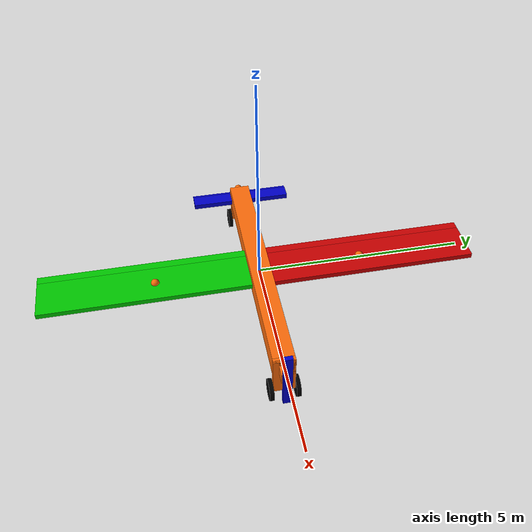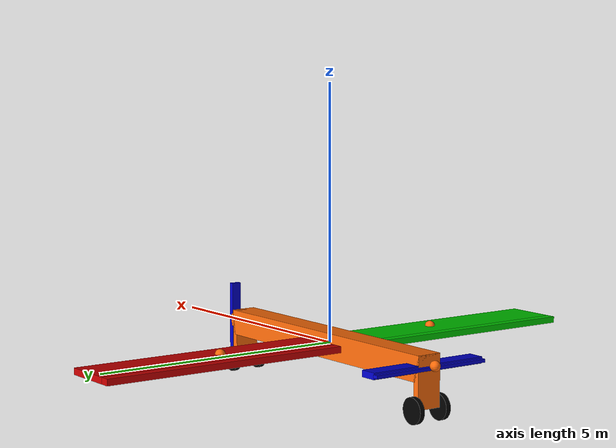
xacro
<?xml version="1.0"?>
<robot name="planesil" xmlns:xacro="http://www.ros.org/wiki/xacro">
    <xacro:include filename="$(find planesim_description)/urdf/materials.xacro" />
    <xacro:include filename="$(find planesim_description)/urdf/macros.xacro" />

    <xacro:property name="PI" value="3.14" />

    <xacro:property name="bodyY" value="0.5" />
    <xacro:property name="bodyX" value="6" />
    <xacro:property name="bodyZ" value="0.5" />
    <xacro:property name="bodyMass" value="100" />

    <xacro:property name="wingY" value="5" />
    <xacro:property name="wingX" value="1" />
    <xacro:property name="wingZ" value="${bodyZ/4}" />
    <xacro:property name="wingMass" value="50" />

    <xacro:property name="landingGearY" value="${bodyY}" />
    <xacro:property name="landingGearX" value="0.125" />
    <xacro:property name="landingGearZ" value="1" />
    <xacro:property name="landingGearMass" value="10" />

    <xacro:property name="wheelWidth" value="0.1 "/>
    <xacro:property name="wheelRadius" value="0.25 "/>
    <xacro:property name="wheelMass" value="5" />

    <xacro:property name="propellerBlockX" value="0.25" />
    <xacro:property name="propellerBlockY" value="${bodyY/2}" />
    <xacro:property name="propellerBlockZ" value="${bodyZ/2}" />
    <xacro:property name="propellerBlockMass" value="5" />

    <xacro:property name="propellerX" value="1.5" />      <!-- Length of blade -->
    <xacro:property name="propellerY" value="0.2" />   <!-- Width of blade -->
    <xacro:property name="propellerZ" value="0.1" />    <!-- Thickness of blade -->
    <xacro:property name="propellerMass" value="2" />

    <xacro:property name="elevatorX" value="${wingX/3}" />
    <xacro:property name="elevatorY" value="${wingY/2}" />
    <xacro:property name="elevatorZ" value="${wingZ}" />
    <xacro:property name="elevatorMass" value="125" />

    <!-- X axis is down the runway -->
    <!-- Y axis is to the left of the runway, looking down -->
    <!-- Z axis is up -->

    <link name="body">
        <inertial>
            <origin xyz="0 0 0" rpy="0 0 0"/>
            <mass value="${bodyMass}"/>
            <xacro:box_inertia m="${bodyMass}" x="${bodyX}" y="${bodyY}" z="${bodyZ}"/>
        </inertial>

        <collision>
            <origin xyz="0 0 0" rpy="0 0 0"/>
            <geometry>
                <box size="${bodyX} ${bodyY} ${bodyZ}"/>
            </geometry>
        </collision>

        <visual>
            <origin xyz="0 0 0" rpy="0 0 0"/>
            <geometry>
                <box size="${bodyX} ${bodyY} ${bodyZ}"/>
            </geometry>
            <material name="orange"/>
        </visual>
    </link>

    <gazebo reference="body">
        <material>Gazebo/Gray</material>
    </gazebo>

    <link name="base_link"/>
    <joint name="base_joint" type="fixed">
        <parent link="base_link"/>
        <child link="body"/>
    </joint>

    <xacro:wing name="left" left="1"/>
    <xacro:wing name="right" left="-1"/>

    <xacro:landingGear name="front" front="1"/>
    <xacro:landingGear name="back" front="-1"/>

    <xacro:wheel name="frontLeft_wheel" front="1" left="1" />
    <xacro:wheel name="frontRight_wheel" front="1" left="-1" />
    <xacro:wheel name="backLeft_wheel" front="-1" left="1" />
    <xacro:wheel name="backRight_wheel" front="-1" left="-1" />

    <link name="propellerBlock">
        <inertial>
            <origin xyz="0 0 0" rpy="0 0 0"/>
            <mass value="${propellerBlockMass}"/>
            <xacro:box_inertia m="${propellerBlockMass}" x="${propellerBlockX}" y="${propellerBlockY}" z="${propellerBlockZ}"/>
        </inertial>

        <collision>
            <origin xyz="0 0 0" rpy="0 0 0"/>
            <geometry>
                <box size="${propellerBlockX} ${propellerBlockY} ${propellerBlockZ}"/>
            </geometry>
        </collision>

        <visual>
            <origin xyz="0 0 0" rpy="0 0 0"/>
            <geometry>
                <box size="${propellerBlockX} ${propellerBlockY} ${propellerBlockZ}"/>
            </geometry>
            <material name="orange"/>
        </visual>
    </link>

    <gazebo reference="propellerBlock">
        <material>Gazebo/Orange</material>
    </gazebo>

    <joint name="propellerBlock_joint" type="fixed">
        <parent link="body"/>
        <child link="propellerBlock"/>
        <origin xyz="${bodyX/2 + propellerBlockX/2} 0 0" rpy="0 0 0"/>
    </joint>

    <link name="propeller">
        <inertial>
            <origin xyz="0 0 0" rpy="0 ${PI/2} 0"/>
            <mass value="${propellerMass}"/>
            <xacro:box_inertia m="${propellerMass}" x="${propellerX}" y="${propellerY}" z="${propellerZ}"/>
        </inertial>

        <collision>
            <origin xyz="0 0 0" rpy="0 ${PI/2} 0"/>
            <geometry>
                <box size="${propellerX} ${propellerY} ${propellerZ}"/>
            </geometry>
        </collision>

        <visual>
            <origin xyz="0 0 0" rpy="0 ${PI/2} 0"/>
            <geometry>
                <box size="${propellerX} ${propellerY} ${propellerZ}"/>
            </geometry>
            <material name="blue"/>
        </visual>
    </link>

    <gazebo reference="propeller">
        <material>Gazebo/Blue</material>
        <kp>1000000</kp>
        <kd>1000000</kd>
        <mu1>10.0</mu1>
        <mu2>10.0</mu2>
    </gazebo>

    <joint name="propeller_joint" type="continuous">
        <parent link="propellerBlock" />
        <child link="propeller" />
        <origin xyz="${propellerBlockX/2 + propellerZ/2} 0 0" rpy="0 0 0"/>
    </joint>

    <xacro:joint_transmission joint_name="propeller"/>

    <link name="elevator">
        <inertial>
            <origin xyz="0 0 0" rpy="0 0 0"/>
                <mass value="${elevatorMass}"/>
                <xacro:box_inertia m="${elevatorMass}" x="${elevatorX}" y="${elevatorY}" z="${elevatorZ}"/>
            </inertial>

            <collision>
                <origin xyz="0 0 0" rpy="0 0 0"/>
                <geometry>
                    <box size="${elevatorX} ${elevatorY} ${elevatorZ}"/>
                </geometry>
            </collision>

            <visual>
                <origin xyz="0 0 0" rpy="0 0 0"/>
                <geometry>
                    <box size="${elevatorX} ${elevatorY} ${elevatorZ}"/>
                </geometry>

                <material name="blue"/>
            </visual>
    </link>

    <gazebo reference="elevator">
        <material>Gazebo/Blue</material>
    </gazebo>

    <joint name="elevator_joint" type="fixed">
        <parent link="body" />
        <child link="elevator" />
        <origin xyz="${-bodyX/2 + elevatorX/2} 0 0" rpy="0 0 0" />
    </joint>

    <link name="elevator_controlsurface">
        <inertial>
            <origin xyz="${-elevatorX/10} 0 0" rpy="0 0 0"/>
            <mass value="${elevatorMass/5}"/>
            <xacro:box_inertia m="${elevatorMass/5}" x="${elevatorX/3}" y="${elevatorY}" z="${elevatorZ/2}"/>
        </inertial>

        <collision>
            <origin xyz="${-elevatorX/10} 0 0" rpy="0 0 0"/>
            <geometry>
                    <box size="${elevatorX/5} ${elevatorY} ${elevatorZ}"/>
            </geometry>
        </collision>

        <visual>
            <origin xyz="${-elevatorX/10} 0 0" rpy="0 0 0"/>
            <geometry>
                <box size="${-elevatorX/3} ${elevatorY} ${elevatorZ/2}"/>
            </geometry>

            <material name="blue" />
        </visual>
    </link>

    <joint name="elevator_controlsurface_joint" type="continuous">
        <parent link="elevator" />
        <child link="elevator_controlsurface" />
        <origin xyz="${-elevatorX/2} 0 0" rpy="0 0 0" />
        <axis xyz="0 1 0" rpy="0 0 0" />
    </joint>

    <joint_transmission joint_name="elevator_controlsurface" reduction="100"/>

    <xacro:sphere_marker
        name="leftWingCP"
        markerX="0"
        markerY="${wingY/2}"
        markerZ="${wingZ/2}"
    />

    <xacro:sphere_marker
        name="rightWingCP"
        markerX="0"
        markerY="${-wingY/2}"
        markerZ="${wingZ/2}"
    />

    <xacro:sphere_marker
        name="elevatorCP"
        markerX="${-bodyX/2 + -elevatorX/2}"
        markerY="0"
        markerZ="${elevatorZ/2}"
    />

    <gazebo>
        <plugin name="propellerTopBlade" filename="libLiftDragPlugin.so">
            <a0>0.4</a0>
            <cla>4.752798721</cla>
            <cda>0.6417112299</cda>
            <cma>0</cma>
            <alpha_stall>1.5</alpha_stall>
            <cla_stall>-3.85</cla_stall>
            <cda_stall>-0.9233984055</cda_stall>
            <cma_stall>0</cma_stall>
            <air_density>1</air_density>
            <cp> ${propellerZ/2} 0 ${propellerX/4} </cp>
            <area>${propellerX * propellerY / 2}</area>
            <forward> 0 1 0 </forward>
            <upward> 1 0 0</upward>
            <link_name>propeller</link_name>
        </plugin>

        <plugin name="propellerBottomBlade" filename="libLiftDragPlugin.so">
            <a0>0.4</a0>
            <cla>4.752798721</cla>
            <cda>0.6417112299</cda>
            <cma>0</cma>
            <alpha_stall>1.5</alpha_stall>
            <cla_stall>-3.85</cla_stall>
            <cda_stall>-0.9233984055</cda_stall>
            <cma_stall>0</cma_stall>
            <air_density>1</air_density>
            <cp> ${propellerZ/2} 0 ${-propellerX/4} </cp>
            <area> 0.5 </area>
            <forward> 0 -1 0 </forward>
            <upward> 1 0 0 </upward>
            <link_name>propeller</link_name>
        </plugin>

        <plugin name="leftWing" filename="libplanesim_liftdrag.so">
            <a0>0.05984281113</a0>
            <cla>4.752798721</cla>
            <cda>0.6417112299</cda>
            <cma>-1.8</cma>
            <alpha_stall>0.3391428111</alpha_stall>
            <cla_stall>-3.85</cla_stall>
            <cda_stall>-0.9233984055</cda_stall>
            <cma_stall>0</cma_stall>
            <air_density> 2 </air_density>
            <cp> 0 ${wingY/2} ${wingZ/2}</cp>
            <area> ${(wingX/2) * (wingY/2)}</area>
            <forward> 1 0 0 </forward>
            <upward> 0 0 1 </upward>
            <link_name>base_link</link_name>
            <control_joint_name>left_controlsurface_joint</control_joint_name>
            <control_joint_rad_to_cl>-2.0</control_joint_rad_to_cl>
        </plugin>

        <plugin name="rightWing" filename="libplanesim_liftdrag.so">
            <a0>0.05984281113</a0>
            <cla>4.752798721</cla>
            <cda>0.6417112299</cda>
            <cma>-1.8</cma>
            <alpha_stall>0.3391428111</alpha_stall>
            <cla_stall>-3.85</cla_stall>
            <cda_stall>-0.9233984055</cda_stall>
            <cma_stall>0</cma_stall>
            <air_density> 2 </air_density>
            <cp> 0 ${-wingY/2} ${wingZ/2}</cp>
            <area> ${(wingX/2) * (wingY/2)}</area>
            <forward> 1 0 0 </forward>
            <upward> 0 0 1 </upward>
            <link_name>base_link</link_name>
            <control_joint_name>right_controlsurface_joint</control_joint_name>
            <control_joint_rad_to_cl>-2.0</control_joint_rad_to_cl>
        </plugin>

        <plugin name="elevator" filename="libplanesim_liftdrag.so">
            <a0>0.05984281113</a0>
            <cla>4.752798721</cla>
            <cda>0.6417112299</cda>
            <cma>-1.8</cma>
            <alpha_stall>0.3391428111</alpha_stall>
            <cla_stall>-3.85</cla_stall>
            <cda_stall>-0.9233984055</cda_stall>
            <cma_stall>0</cma_stall>
            <air_density> 2 </air_density>
            <cp> ${-bodyX/2 + -elevatorX/2} 0 ${elevatorZ/2}</cp>
            <area> ${(elevatorX/2) * (elevatorY/2)}</area>
            <forward> 1 0 0 </forward>
            <upward> 0 0 1 </upward>
            <link_name>base_link</link_name>
            <control_joint_name>elevator_controlsurface_joint</control_joint_name>
            <control_joint_rad_to_cl>-2.0</control_joint_rad_to_cl>
        </plugin>

    </gazebo>

    <gazebo>
        <plugin name="gazebo_ros_control" filename="libgazebo_ros_control.so">
            <robotNamespace>/planesim</robotNamespace>
        </plugin>
    </gazebo>

</robot>

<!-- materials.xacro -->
<robot name="planesil" xmlns:xacro="http://www.ros.org/wiki/xacro">
    <material name="black">
        <color rgba="0.0 0.0 0.0 1.0"/>
    </material>

    <material name="blue">
        <color rgba="0.0 0.0 0.8 1.0"/>
    </material>

    <material name="green">
        <color rgba="0.0 0.8 0.0 1.0"/>
    </material>

    <material name="grey">
        <color rgba="0.2 0.2 0.2 1.0"/>
    </material>

    <material name="orange">
        <color rgba="${255/255} ${108/255} ${10/255} 1.0"/>
    </material>

    <material name="brown">
        <color rgba="${222/255} ${207/255} ${195/255} 1.0"/>
    </material>

    <material name="red">
        <color rgba="0.8 0.0 0.0 1.0"/>
    </material>

    <material name="white">
        <color rgba="1.0 1.0 1.0 1.0"/>
    </material>
</robot>

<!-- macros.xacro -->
<robot name="planesil" xmlns:xacro="http://www.ros.org/wiki/xacro">

    <macro name="cylinder_inertia" params="m r h">
        <inertia  ixx="${m*(3*r*r+h*h)/12}" ixy = "0" ixz = "0"
            iyy="${m*(3*r*r+h*h)/12}" iyz = "0"
            izz="${m*r*r/2}"
        />
    </macro>

    <macro name="box_inertia" params="m x y z">
        <inertia  ixx="${m*(y*y+z*z)/12}" ixy = "0" ixz = "0"
            iyy="${m*(x*x+z*z)/12}" iyz = "0"
            izz="${m*(x*x+z*z)/12}"
        />
    </macro>

    <macro name="sphere_inertia" params="m r">
        <inertia  ixx="${2*m*r*r/5}" ixy = "0" ixz = "0"
            iyy="${2*m*r*r/5}" iyz = "0"
            izz="${2*m*r*r/5}"
        />
    </macro>

    <xacro:macro name="joint_transmission" params="joint_name reduction:=10">
        <transmission name="${joint_name}_transmission">
            <type>transmission_interface/SimpleTransmission</type>
            <joint name="${joint_name}_joint">
                <hardwareInterface>hardware_interface/EffortJointInterface</hardwareInterface>
            </joint>
            <actuator name="${joint_name}_servo">
                <hardwareInterface>EffortJointInterface</hardwareInterface>
                <mechanicalReduction>${reduction}</mechanicalReduction>
            </actuator>
        </transmission>
    </xacro:macro>

    <xacro:macro name="sphere_marker" params="name markerX markerY markerZ markerRadius:=0.1">
        <link name="${name}_marker">
            <visual>
                <origin xyz="0 0 0" rpy="0 0 0"/>
                <geometry>
                    <sphere radius="${markerRadius}"/>
                </geometry>
                <material name="orange"/>
            </visual>
        </link>

        <gazebo reference="${name}_marker">
            <material>Gazebo/Orange</material>
        </gazebo>

        <joint name="${name}_marker_joint" type="fixed">
            <parent link="body"/>
            <child link="${name}_marker"/>
            <origin xyz="${markerX} ${markerY} ${markerZ}" rpy="0 0 0"/>
        </joint>
    </xacro:macro>

    <xacro:macro name="wing" params="name left">
        <link name="${name}_wing">
            <inertial>
                <origin xyz="0 0 0" rpy="0 0 0"/>
                <mass value="${wingMass}"/>
                <xacro:box_inertia m="${wingMass}" x="${wingX}" y="${wingY}" z="${wingZ}"/>
            </inertial>

            <collision>
                <origin xyz="0 0 0" rpy="0 0 0"/>
                <geometry>
                    <box size="${wingX} ${wingY} ${wingZ}"/>
                </geometry>
            </collision>

            <visual>
                <origin xyz="0 0 0" rpy="0 0 0"/>
                <geometry>
                    <box size="${wingX} ${wingY} ${wingZ}"/>
                </geometry>

                <!-- Port/Starboard colors -->
                <xacro:if value="${left == 1}">
                    <material name="red"/>
                </xacro:if>
                <xacro:unless value="${left == 1}">
                    <material name="green"/>
                </xacro:unless>
            </visual>
        </link>

        <gazebo reference="${name}_wing">
            <xacro:if value="${left == 1}">
                <material>
                    Gazebo/Red
                </material>
            </xacro:if>
            <xacro:unless value="${left == 1}">
                <material>
                    Gazebo/Green
                </material>
            </xacro:unless>

        </gazebo>

        <joint name="${name}_wing_joint" type="fixed">
            <parent link="body"/>
            <child link="${name}_wing"/>
            <origin xyz="0 ${left * (bodyY/2 + wingY/2)} 0" rpy="0 0 0"/>
            <axis xyz="0 1 0" rpy="0 0 0"/>
        </joint>

        <link name="${name}_controlsurface">
            <inertial>
                <origin xyz="0 0 0" rpy="0 0 0"/>
                <mass value="${wingMass/5}"/>
                <xacro:box_inertia m="${wingMass/5}" x="${wingX/5}" y="${wingY}" z="${wingZ}"/>
            </inertial>

            <collision>
                <origin xyz="0 0 0" rpy="0 0 0"/>
                <geometry>
                    <box size="${wingX/5} ${wingY} ${wingZ}"/>
                </geometry>
            </collision>

            <visual>
                <origin xyz="0 0 0" rpy="0 0 0"/>
                <geometry>
                    <box size="${wingX/5} ${wingY} ${wingZ}"/>
                </geometry>

                <!-- Port/Starboard colors -->
                <xacro:if value="${left == 1}">
                    <material name="red"/>
                </xacro:if>
                <xacro:unless value="${left == 1}">
                    <material name="green"/>
                </xacro:unless>
            </visual>
        </link>

        <joint name="${name}_controlsurface_joint" type="continuous">
            <parent link="${name}_wing" />
            <child link="${name}_controlsurface" />
            <origin xyz="${-wingX/2 + -wingX/10} 0 0" rpy="0 0 0" />
            <axis xyz="0 1 0" rpy="0 0 0" />
        </joint>

        <joint_transmission joint_name="${name}_controlsurface" reduction="100"/>
    </xacro:macro>

    <xacro:macro name="landingGear" params="name front">
        <link name="${name}_landingGear">
            <inertial>
                <origin xyz="0 0 0" rpy="0 0 0"/>
                <mass value="${landingGearMass}"/>
                <xacro:box_inertia m="${landingGearMass}" x="${landingGearX}" y="${landingGearY}" z="${landingGearZ}"/>
            </inertial>

            <collision>
                <origin xyz="0 0 0" rpy="0 0 0"/>
                <geometry>
                    <box size="${landingGearX} ${landingGearY} ${landingGearZ}"/>
                </geometry>
            </collision>

            <visual>
                <origin xyz="0 0 0" rpy="0 0 0"/>
                <geometry>
                    <box size="${landingGearX} ${landingGearY} ${landingGearZ}"/>
                </geometry>
                <material name="orange"/>
            </visual>
        </link>

        <gazebo reference="${name}_landingGear">
            <material>Gazebo/Orange</material>
        </gazebo>

        <joint name="${name}_landingGear_joint" type="fixed">
            <parent link="body"/>
            <child link="${name}_landingGear"/>
            <origin xyz="${front * (bodyX/2 - landingGearX/2)} 0 ${bodyZ/2-landingGearZ/2}" rpy="0 0 0"/>
        </joint>
    </xacro:macro>

    <xacro:macro name="wheel" params="name front left">
         <link name="${name}_wheel">
            <collision>
                <origin xyz="0 0 0" rpy="0 ${PI/2} ${PI/2}" />
                <geometry>
                <cylinder length="${wheelWidth}" radius="${wheelRadius}"/>
                </geometry>
            </collision>

            <visual>
                <origin xyz="0 0 0" rpy="0 ${PI/2} ${PI/2}" />
                <geometry>
                <cylinder length="${wheelWidth}" radius="${wheelRadius}"/>
                </geometry>
                <material name="black"/>
            </visual>

            <inertial>
                <origin xyz="0 0 0" rpy="0 ${PI/2} ${PI/2}" />
                <mass value="${wheelMass}"/>
                <xacro:cylinder_inertia m="${wheelMass}" r="${wheelRadius}" h="${wheelWidth}"/>
            </inertial>
        </link>

        <gazebo reference="${name}_wheel">
            <mu1 value="1.0"/>
            <mu2 value="1.0"/>
            <kp  value="10000000.0" />
            <kd  value="1.0" />
            <fdir1 value="1 0 0"/>
            <material>Gazebo/Black</material>
        </gazebo>

        <joint name="${name}_wheel_hinge" type="continuous">
            <!-- Different parent landingGears for front/back wheels -->
            <xacro:if value="${front == 1}">
                <parent link="front_landingGear"/>
            </xacro:if>
            <xacro:unless value="${front == 1}">
                <parent link="back_landingGear"/>
            </xacro:unless>

            <child link="${name}_wheel"/>
            <origin xyz="0 ${left * (landingGearY/2 + wheelWidth/2)} ${-landingGearZ/2}" rpy="0 0 0" />
            <axis xyz="0 1 0" rpy="0 0 0" />
            <limit effort="100" velocity="100"/>
            <joint_properties damping="0.0" friction="0.5"/>
        </joint>
    </xacro:macro>

</robot>
